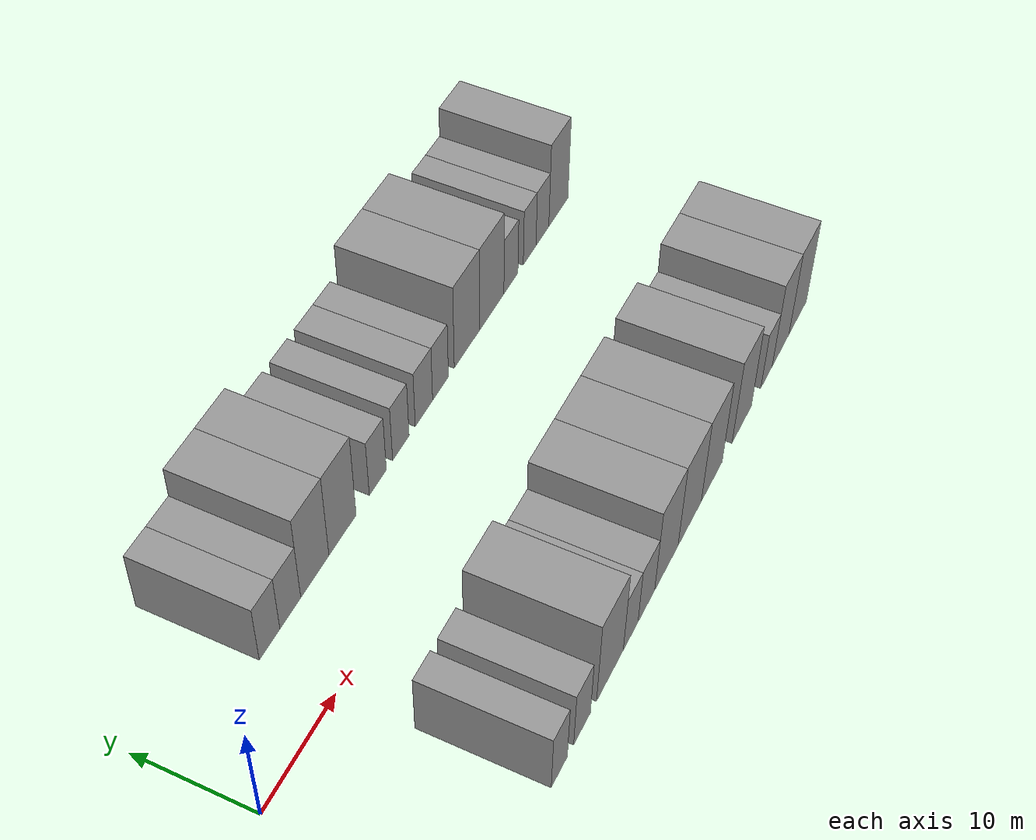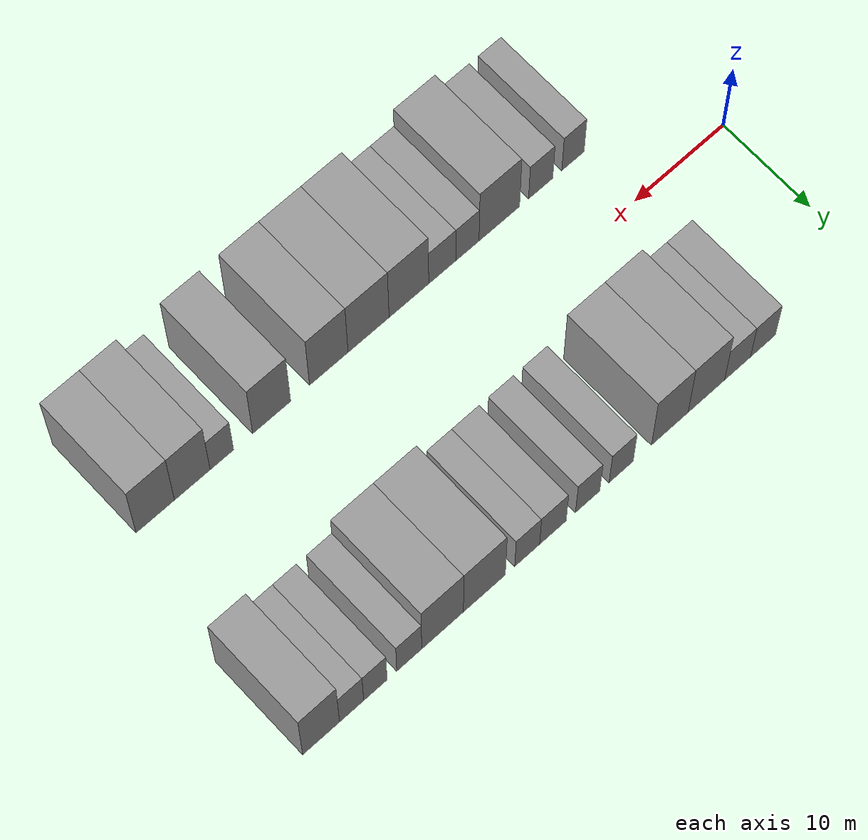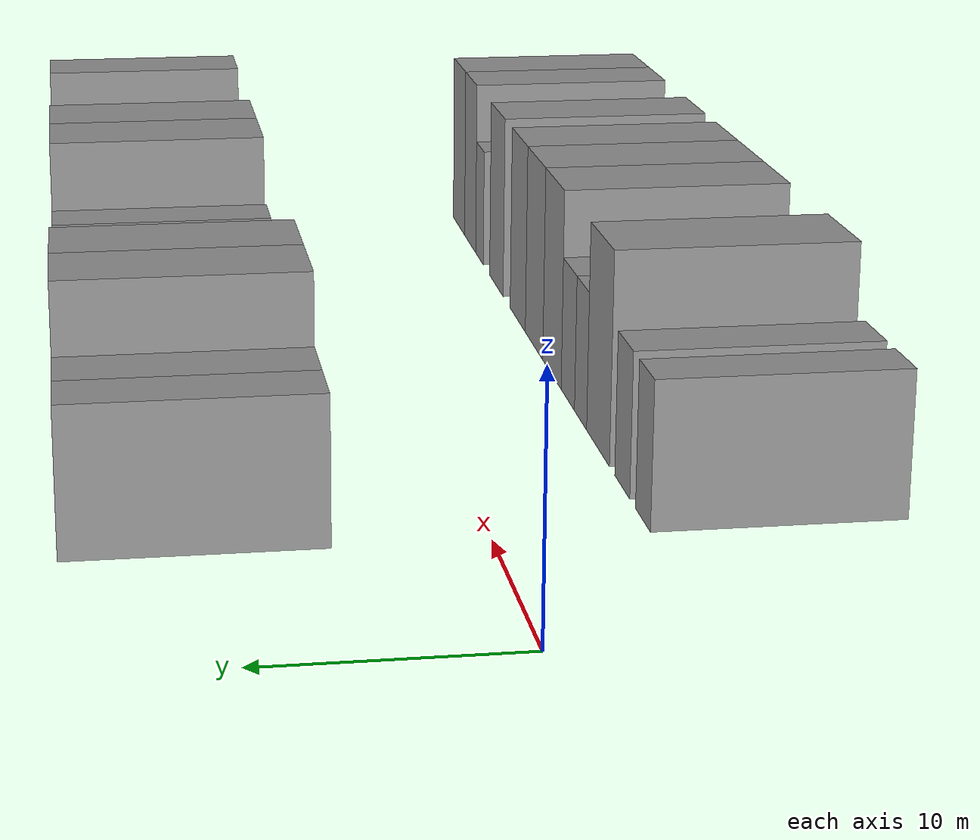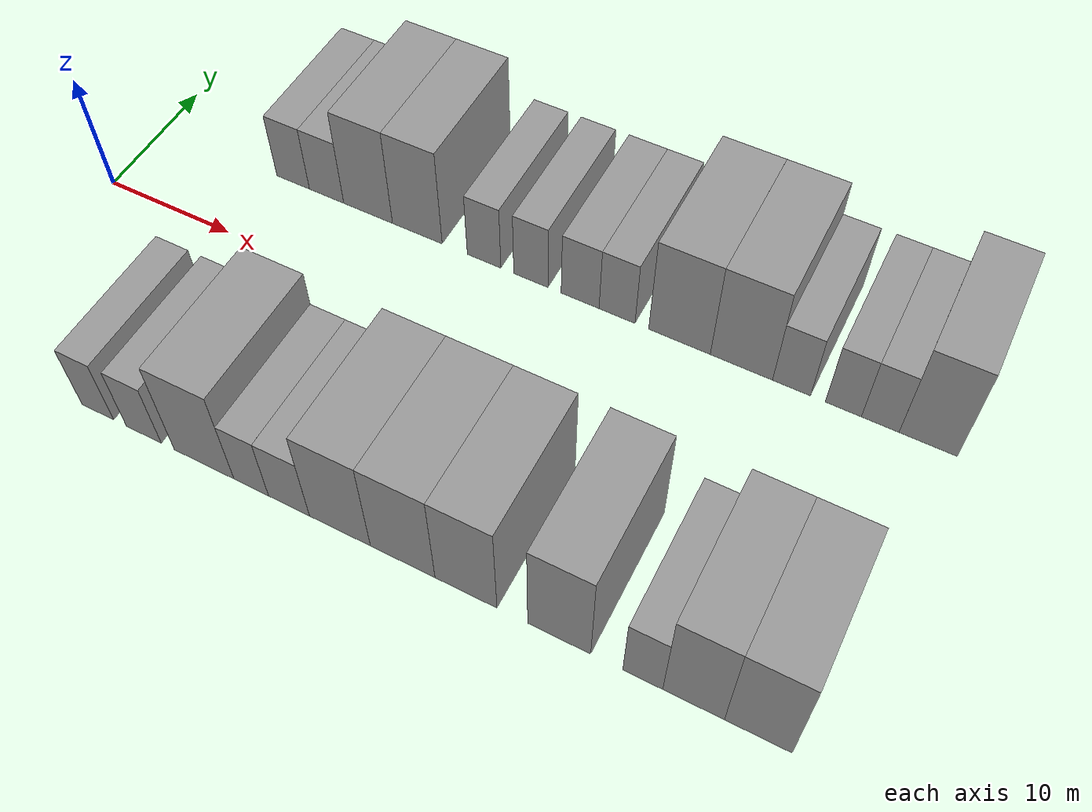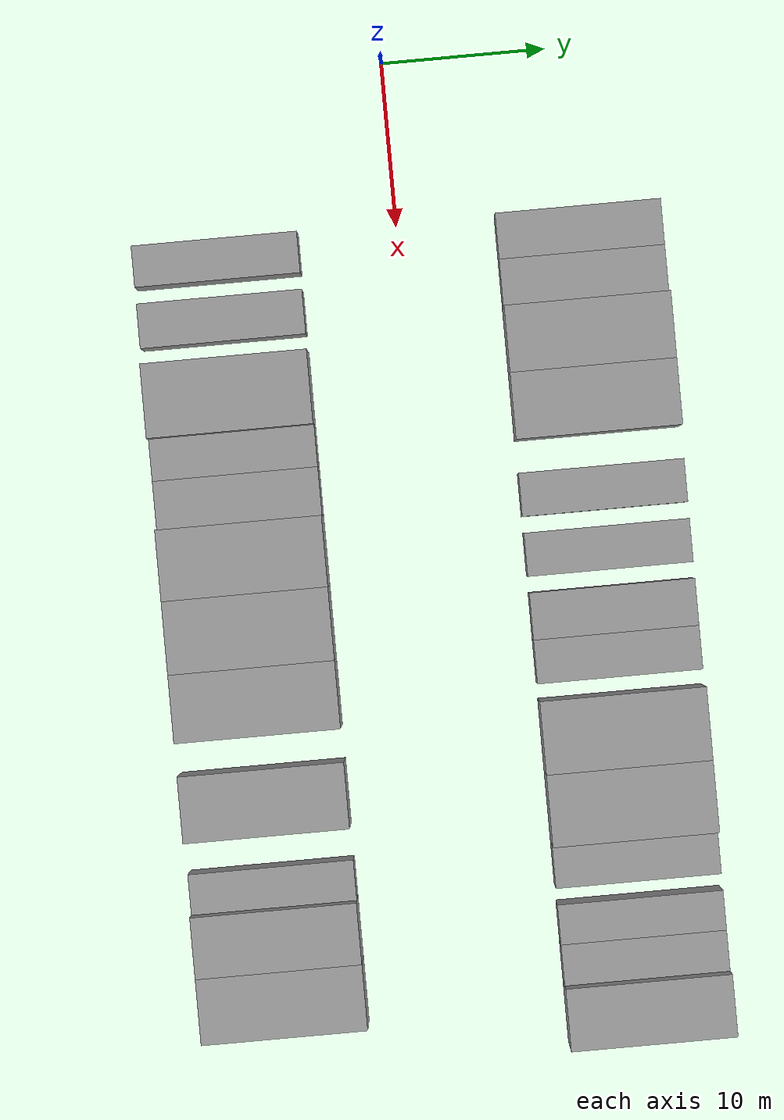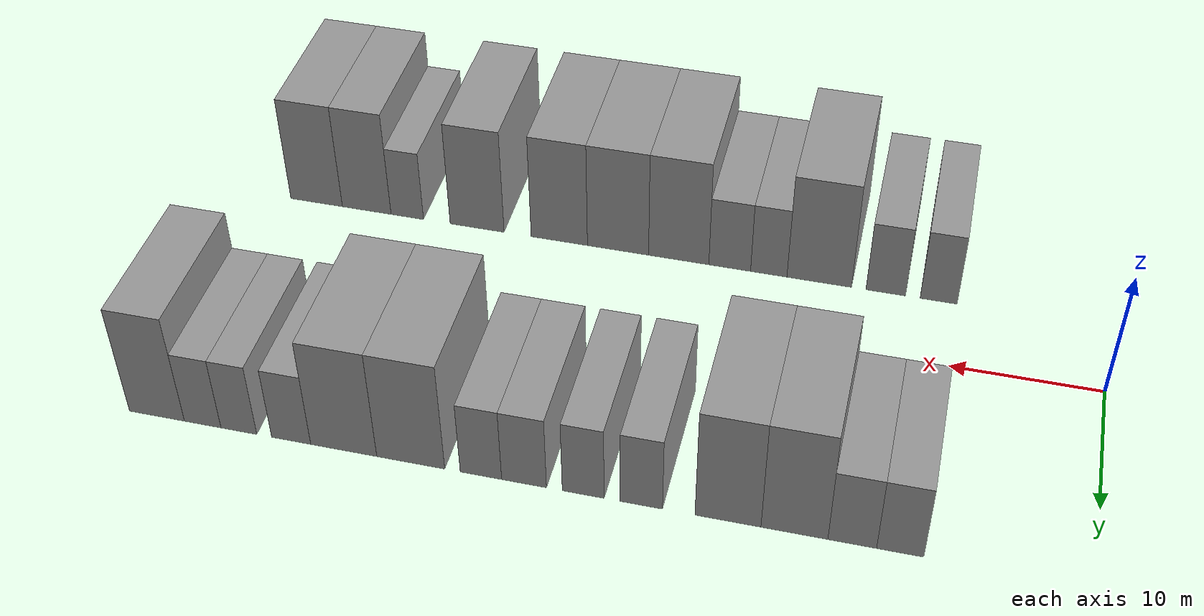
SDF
<sdf version="1.6">
 <world name="default">
  <model name="building_1">
   <static>1</static>
   <pose>11.3908 11.0000 0 0.000000 0.000000 1.570796</pose>
   <link name="link">
    <pose>0 0 3.00 0 0 0</pose>
    <collision name="collision"><geometry><box><size>10.0000 2.7816 6.0000</size></box></geometry></collision>
    <visual name="visual">
     <cast_shadows>0</cast_shadows>
     <geometry><box><size>10.0000 2.7816 6.0000</size></box></geometry>
     <material>
      <script>
       <uri>model://grey_wall/materials/scripts</uri>
       <uri>model://grey_wall/materials/textures</uri>
       <name>vrc/grey_wall</name>
      </script>
     </material>
    </visual>
   </link>
  </model>
  <model name="building_2">
   <static>1</static>
   <pose>14.2303 11.0000 0 0.000000 0.000000 1.570796</pose>
   <link name="link">
    <pose>0 0 3.00 0 0 0</pose>
    <collision name="collision"><geometry><box><size>10.0000 2.8974 6.0000</size></box></geometry></collision>
    <visual name="visual">
     <cast_shadows>0</cast_shadows>
     <geometry><box><size>10.0000 2.8974 6.0000</size></box></geometry>
     <material>
      <script>
       <uri>model://grey_wall/materials/scripts</uri>
       <uri>model://grey_wall/materials/textures</uri>
       <name>vrc/grey_wall</name>
      </script>
     </material>
    </visual>
   </link>
  </model>
  <model name="building_3">
   <static>1</static>
   <pose>17.6931 11.0000 0 0.000000 0.000000 1.570796</pose>
   <link name="link">
    <pose>0 0 4.50 0 0 0</pose>
    <collision name="collision"><geometry><box><size>10.0000 4.0282 9.0000</size></box></geometry></collision>
    <visual name="visual">
     <cast_shadows>0</cast_shadows>
     <geometry><box><size>10.0000 4.0282 9.0000</size></box></geometry>
     <material>
      <script>
       <uri>model://grey_wall/materials/scripts</uri>
       <uri>model://grey_wall/materials/textures</uri>
       <name>vrc/grey_wall</name>
      </script>
     </material>
    </visual>
   </link>
  </model>
  <model name="building_4">
   <static>1</static>
   <pose>21.7171 11.0000 0 0.000000 0.000000 1.570796</pose>
   <link name="link">
    <pose>0 0 4.50 0 0 0</pose>
    <collision name="collision"><geometry><box><size>10.0000 4.0198 9.0000</size></box></geometry></collision>
    <visual name="visual">
     <cast_shadows>0</cast_shadows>
     <geometry><box><size>10.0000 4.0198 9.0000</size></box></geometry>
     <material>
      <script>
       <uri>model://grey_wall/materials/scripts</uri>
       <uri>model://grey_wall/materials/textures</uri>
       <name>vrc/grey_wall</name>
      </script>
     </material>
    </visual>
   </link>
  </model>
  <model name="building_5">
   <static>1</static>
   <pose>27.0392 11.0000 0 0.000000 0.000000 1.570796</pose>
   <link name="link">
    <pose>0 0 3.00 0 0 0</pose>
    <collision name="collision"><geometry><box><size>10.0000 2.6245 6.0000</size></box></geometry></collision>
    <visual name="visual">
     <cast_shadows>0</cast_shadows>
     <geometry><box><size>10.0000 2.6245 6.0000</size></box></geometry>
     <material>
      <script>
       <uri>model://grey_wall/materials/scripts</uri>
       <uri>model://grey_wall/materials/textures</uri>
       <name>vrc/grey_wall</name>
      </script>
     </material>
    </visual>
   </link>
  </model>
  <model name="building_6">
   <static>1</static>
   <pose>30.6633 11.0000 0 0.000000 0.000000 1.570796</pose>
   <link name="link">
    <pose>0 0 3.00 0 0 0</pose>
    <collision name="collision"><geometry><box><size>10.0000 2.6236 6.0000</size></box></geometry></collision>
    <visual name="visual">
     <cast_shadows>0</cast_shadows>
     <geometry><box><size>10.0000 2.6236 6.0000</size></box></geometry>
     <material>
      <script>
       <uri>model://grey_wall/materials/scripts</uri>
       <uri>model://grey_wall/materials/textures</uri>
       <name>vrc/grey_wall</name>
      </script>
     </material>
    </visual>
   </link>
  </model>
  <model name="building_7">
   <static>1</static>
   <pose>34.3985 11.0000 0 0.000000 0.000000 1.570796</pose>
   <link name="link">
    <pose>0 0 3.00 0 0 0</pose>
    <collision name="collision"><geometry><box><size>10.0000 2.8468 6.0000</size></box></geometry></collision>
    <visual name="visual">
     <cast_shadows>0</cast_shadows>
     <geometry><box><size>10.0000 2.8468 6.0000</size></box></geometry>
     <material>
      <script>
       <uri>model://grey_wall/materials/scripts</uri>
       <uri>model://grey_wall/materials/textures</uri>
       <name>vrc/grey_wall</name>
      </script>
     </material>
    </visual>
   </link>
  </model>
  <model name="building_8">
   <static>1</static>
   <pose>37.1475 11.0000 0 0.000000 0.000000 1.570796</pose>
   <link name="link">
    <pose>0 0 3.00 0 0 0</pose>
    <collision name="collision"><geometry><box><size>10.0000 2.6512 6.0000</size></box></geometry></collision>
    <visual name="visual">
     <cast_shadows>0</cast_shadows>
     <geometry><box><size>10.0000 2.6512 6.0000</size></box></geometry>
     <material>
      <script>
       <uri>model://grey_wall/materials/scripts</uri>
       <uri>model://grey_wall/materials/textures</uri>
       <name>vrc/grey_wall</name>
      </script>
     </material>
    </visual>
   </link>
  </model>
  <model name="building_9">
   <static>1</static>
   <pose>41.6836 11.0000 0 0.000000 0.000000 1.570796</pose>
   <link name="link">
    <pose>0 0 4.50 0 0 0</pose>
    <collision name="collision"><geometry><box><size>10.0000 4.4210 9.0000</size></box></geometry></collision>
    <visual name="visual">
     <cast_shadows>0</cast_shadows>
     <geometry><box><size>10.0000 4.4210 9.0000</size></box></geometry>
     <material>
      <script>
       <uri>model://grey_wall/materials/scripts</uri>
       <uri>model://grey_wall/materials/textures</uri>
       <name>vrc/grey_wall</name>
      </script>
     </material>
    </visual>
   </link>
  </model>
  <model name="building_10">
   <static>1</static>
   <pose>46.0706 11.0000 0 0.000000 0.000000 1.570796</pose>
   <link name="link">
    <pose>0 0 4.50 0 0 0</pose>
    <collision name="collision"><geometry><box><size>10.0000 4.3528 9.0000</size></box></geometry></collision>
    <visual name="visual">
     <cast_shadows>0</cast_shadows>
     <geometry><box><size>10.0000 4.3528 9.0000</size></box></geometry>
     <material>
      <script>
       <uri>model://grey_wall/materials/scripts</uri>
       <uri>model://grey_wall/materials/textures</uri>
       <name>vrc/grey_wall</name>
      </script>
     </material>
    </visual>
   </link>
  </model>
  <model name="building_11">
   <static>1</static>
   <pose>49.5463 11.0000 0 0.000000 0.000000 1.570796</pose>
   <link name="link">
    <pose>0 0 3.00 0 0 0</pose>
    <collision name="collision"><geometry><box><size>10.0000 2.5986 6.0000</size></box></geometry></collision>
    <visual name="visual">
     <cast_shadows>0</cast_shadows>
     <geometry><box><size>10.0000 2.5986 6.0000</size></box></geometry>
     <material>
      <script>
       <uri>model://grey_wall/materials/scripts</uri>
       <uri>model://grey_wall/materials/textures</uri>
       <name>vrc/grey_wall</name>
      </script>
     </material>
    </visual>
   </link>
  </model>
  <model name="building_12">
   <static>1</static>
   <pose>53.0524 11.0000 0 0.000000 0.000000 1.570796</pose>
   <link name="link">
    <pose>0 0 3.00 0 0 0</pose>
    <collision name="collision"><geometry><box><size>10.0000 2.4136 6.0000</size></box></geometry></collision>
    <visual name="visual">
     <cast_shadows>0</cast_shadows>
     <geometry><box><size>10.0000 2.4136 6.0000</size></box></geometry>
     <material>
      <script>
       <uri>model://grey_wall/materials/scripts</uri>
       <uri>model://grey_wall/materials/textures</uri>
       <name>vrc/grey_wall</name>
      </script>
     </material>
    </visual>
   </link>
  </model>
  <model name="building_13">
   <static>1</static>
   <pose>55.4988 11.0000 0 0.000000 0.000000 1.570796</pose>
   <link name="link">
    <pose>0 0 3.00 0 0 0</pose>
    <collision name="collision"><geometry><box><size>10.0000 2.4793 6.0000</size></box></geometry></collision>
    <visual name="visual">
     <cast_shadows>0</cast_shadows>
     <geometry><box><size>10.0000 2.4793 6.0000</size></box></geometry>
     <material>
      <script>
       <uri>model://grey_wall/materials/scripts</uri>
       <uri>model://grey_wall/materials/textures</uri>
       <name>vrc/grey_wall</name>
      </script>
     </material>
    </visual>
   </link>
  </model>
  <model name="building_14">
   <static>1</static>
   <pose>58.6206 11.0000 0 0.000000 0.000000 1.570796</pose>
   <link name="link">
    <pose>0 0 4.50 0 0 0</pose>
    <collision name="collision"><geometry><box><size>10.0000 3.7642 9.0000</size></box></geometry></collision>
    <visual name="visual">
     <cast_shadows>0</cast_shadows>
     <geometry><box><size>10.0000 3.7642 9.0000</size></box></geometry>
     <material>
      <script>
       <uri>model://grey_wall/materials/scripts</uri>
       <uri>model://grey_wall/materials/textures</uri>
       <name>vrc/grey_wall</name>
      </script>
     </material>
    </visual>
   </link>
  </model>
  <model name="building_54">
   <static>1</static>
   <pose>11.2532 -11.0000 0 0.000000 0.000000 1.570796</pose>
   <link name="link">
    <pose>0 0 3.00 0 0 0</pose>
    <collision name="collision"><geometry><box><size>10.0000 2.5065 6.0000</size></box></geometry></collision>
    <visual name="visual">
     <cast_shadows>0</cast_shadows>
     <geometry><box><size>10.0000 2.5065 6.0000</size></box></geometry>
     <material>
      <script>
       <uri>model://grey_wall/materials/scripts</uri>
       <uri>model://grey_wall/materials/textures</uri>
       <name>vrc/grey_wall</name>
      </script>
     </material>
    </visual>
   </link>
  </model>
  <model name="building_55">
   <static>1</static>
   <pose>14.8578 -11.0000 0 0.000000 0.000000 1.570796</pose>
   <link name="link">
    <pose>0 0 3.00 0 0 0</pose>
    <collision name="collision"><geometry><box><size>10.0000 2.7028 6.0000</size></box></geometry></collision>
    <visual name="visual">
     <cast_shadows>0</cast_shadows>
     <geometry><box><size>10.0000 2.7028 6.0000</size></box></geometry>
     <material>
      <script>
       <uri>model://grey_wall/materials/scripts</uri>
       <uri>model://grey_wall/materials/textures</uri>
       <name>vrc/grey_wall</name>
      </script>
     </material>
    </visual>
   </link>
  </model>
  <model name="building_56">
   <static>1</static>
   <pose>19.4526 -11.0000 0 0.000000 0.000000 1.570796</pose>
   <link name="link">
    <pose>0 0 4.50 0 0 0</pose>
    <collision name="collision"><geometry><box><size>10.0000 4.4867 9.0000</size></box></geometry></collision>
    <visual name="visual">
     <cast_shadows>0</cast_shadows>
     <geometry><box><size>10.0000 4.4867 9.0000</size></box></geometry>
     <material>
      <script>
       <uri>model://grey_wall/materials/scripts</uri>
       <uri>model://grey_wall/materials/textures</uri>
       <name>vrc/grey_wall</name>
      </script>
     </material>
    </visual>
   </link>
  </model>
  <model name="building_57">
   <static>1</static>
   <pose>22.9692 -11.0000 0 0.000000 0.000000 1.570796</pose>
   <link name="link">
    <pose>0 0 3.00 0 0 0</pose>
    <collision name="collision"><geometry><box><size>10.0000 2.5466 6.0000</size></box></geometry></collision>
    <visual name="visual">
     <cast_shadows>0</cast_shadows>
     <geometry><box><size>10.0000 2.5466 6.0000</size></box></geometry>
     <material>
      <script>
       <uri>model://grey_wall/materials/scripts</uri>
       <uri>model://grey_wall/materials/textures</uri>
       <name>vrc/grey_wall</name>
      </script>
     </material>
    </visual>
   </link>
  </model>
  <model name="building_58">
   <static>1</static>
   <pose>25.7187 -11.0000 0 0.000000 0.000000 1.570796</pose>
   <link name="link">
    <pose>0 0 3.00 0 0 0</pose>
    <collision name="collision"><geometry><box><size>10.0000 2.9522 6.0000</size></box></geometry></collision>
    <visual name="visual">
     <cast_shadows>0</cast_shadows>
     <geometry><box><size>10.0000 2.9522 6.0000</size></box></geometry>
     <material>
      <script>
       <uri>model://grey_wall/materials/scripts</uri>
       <uri>model://grey_wall/materials/textures</uri>
       <name>vrc/grey_wall</name>
      </script>
     </material>
    </visual>
   </link>
  </model>
  <model name="building_59">
   <static>1</static>
   <pose>29.3431 -11.0000 0 0.000000 0.000000 1.570796</pose>
   <link name="link">
    <pose>0 0 4.50 0 0 0</pose>
    <collision name="collision"><geometry><box><size>10.0000 4.2965 9.0000</size></box></geometry></collision>
    <visual name="visual">
     <cast_shadows>0</cast_shadows>
     <geometry><box><size>10.0000 4.2965 9.0000</size></box></geometry>
     <material>
      <script>
       <uri>model://grey_wall/materials/scripts</uri>
       <uri>model://grey_wall/materials/textures</uri>
       <name>vrc/grey_wall</name>
      </script>
     </material>
    </visual>
   </link>
  </model>
  <model name="building_60">
   <static>1</static>
   <pose>33.7008 -11.0000 0 0.000000 0.000000 1.570796</pose>
   <link name="link">
    <pose>0 0 4.50 0 0 0</pose>
    <collision name="collision"><geometry><box><size>10.0000 4.4189 9.0000</size></box></geometry></collision>
    <visual name="visual">
     <cast_shadows>0</cast_shadows>
     <geometry><box><size>10.0000 4.4189 9.0000</size></box></geometry>
     <material>
      <script>
       <uri>model://grey_wall/materials/scripts</uri>
       <uri>model://grey_wall/materials/textures</uri>
       <name>vrc/grey_wall</name>
      </script>
     </material>
    </visual>
   </link>
  </model>
  <model name="building_61">
   <static>1</static>
   <pose>37.9667 -11.0000 0 0.000000 0.000000 1.570796</pose>
   <link name="link">
    <pose>0 0 4.50 0 0 0</pose>
    <collision name="collision"><geometry><box><size>10.0000 4.1129 9.0000</size></box></geometry></collision>
    <visual name="visual">
     <cast_shadows>0</cast_shadows>
     <geometry><box><size>10.0000 4.1129 9.0000</size></box></geometry>
     <material>
      <script>
       <uri>model://grey_wall/materials/scripts</uri>
       <uri>model://grey_wall/materials/textures</uri>
       <name>vrc/grey_wall</name>
      </script>
     </material>
    </visual>
   </link>
  </model>
  <model name="building_62">
   <static>1</static>
   <pose>44.0270 -11.0000 0 0.000000 0.000000 1.570796</pose>
   <link name="link">
    <pose>0 0 4.50 0 0 0</pose>
    <collision name="collision"><geometry><box><size>10.0000 4.0076 9.0000</size></box></geometry></collision>
    <visual name="visual">
     <cast_shadows>0</cast_shadows>
     <geometry><box><size>10.0000 4.0076 9.0000</size></box></geometry>
     <material>
      <script>
       <uri>model://grey_wall/materials/scripts</uri>
       <uri>model://grey_wall/materials/textures</uri>
       <name>vrc/grey_wall</name>
      </script>
     </material>
    </visual>
   </link>
  </model>
  <model name="building_63">
   <static>1</static>
   <pose>49.2549 -11.0000 0 0.000000 0.000000 1.570796</pose>
   <link name="link">
    <pose>0 0 3.00 0 0 0</pose>
    <collision name="collision"><geometry><box><size>10.0000 2.4482 6.0000</size></box></geometry></collision>
    <visual name="visual">
     <cast_shadows>0</cast_shadows>
     <geometry><box><size>10.0000 2.4482 6.0000</size></box></geometry>
     <material>
      <script>
       <uri>model://grey_wall/materials/scripts</uri>
       <uri>model://grey_wall/materials/textures</uri>
       <name>vrc/grey_wall</name>
      </script>
     </material>
    </visual>
   </link>
  </model>
  <model name="building_64">
   <static>1</static>
   <pose>52.3309 -11.0000 0 0.000000 0.000000 1.570796</pose>
   <link name="link">
    <pose>0 0 4.50 0 0 0</pose>
    <collision name="collision"><geometry><box><size>10.0000 3.7037 9.0000</size></box></geometry></collision>
    <visual name="visual">
     <cast_shadows>0</cast_shadows>
     <geometry><box><size>10.0000 3.7037 9.0000</size></box></geometry>
     <material>
      <script>
       <uri>model://grey_wall/materials/scripts</uri>
       <uri>model://grey_wall/materials/textures</uri>
       <name>vrc/grey_wall</name>
      </script>
     </material>
    </visual>
   </link>
  </model>
  <model name="building_65">
   <static>1</static>
   <pose>56.1618 -11.0000 0 0.000000 0.000000 1.570796</pose>
   <link name="link">
    <pose>0 0 4.50 0 0 0</pose>
    <collision name="collision"><geometry><box><size>10.0000 3.9581 9.0000</size></box></geometry></collision>
    <visual name="visual">
     <cast_shadows>0</cast_shadows>
     <geometry><box><size>10.0000 3.9581 9.0000</size></box></geometry>
     <material>
      <script>
       <uri>model://grey_wall/materials/scripts</uri>
       <uri>model://grey_wall/materials/textures</uri>
       <name>vrc/grey_wall</name>
      </script>
     </material>
    </visual>
   </link>
  </model>
 </world>
</sdf>
